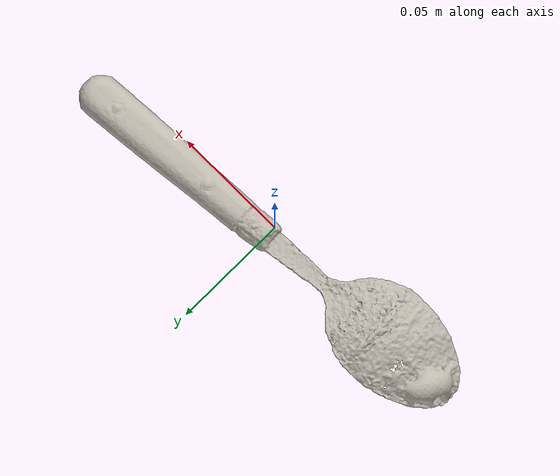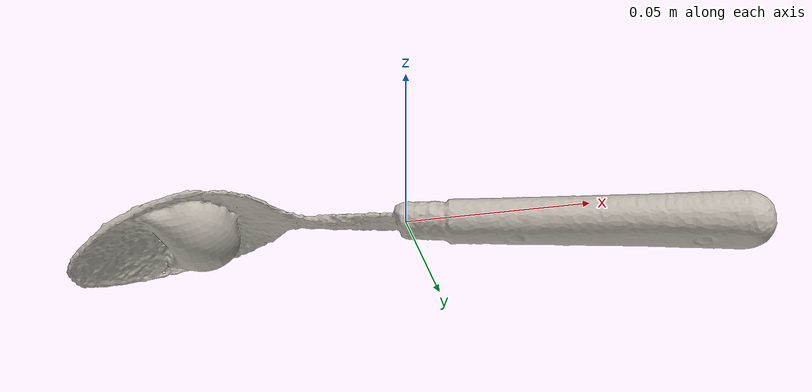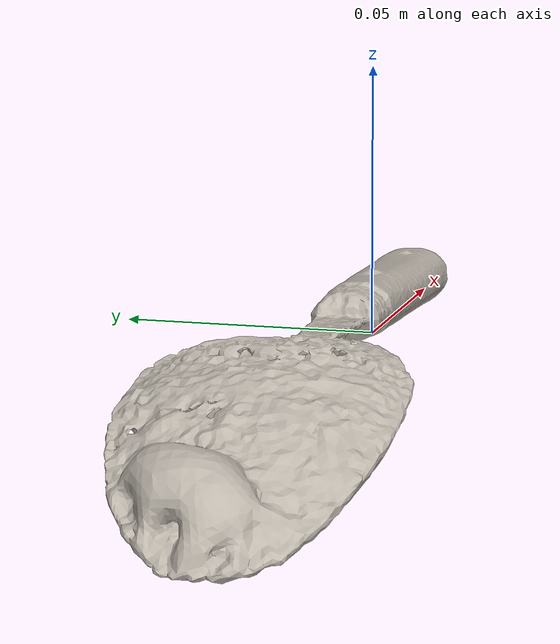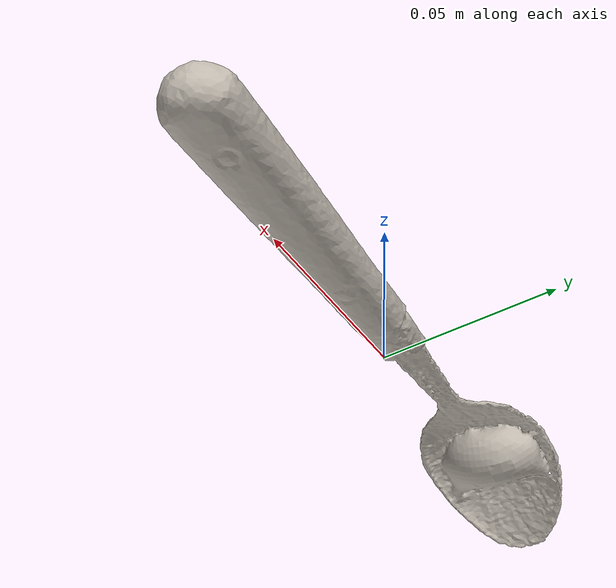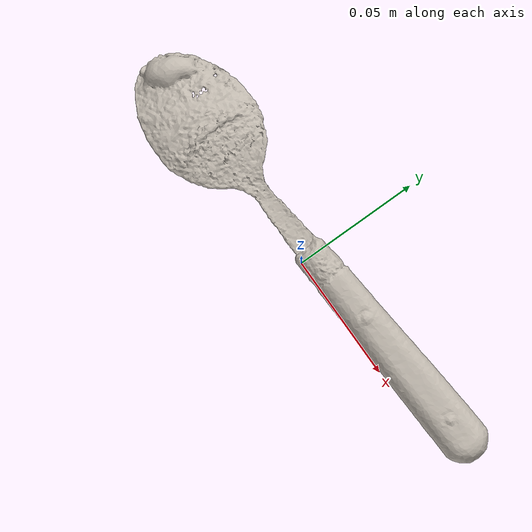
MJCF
<mujoco model="textured">
  <default>
    <default class="visual">
      <geom group="1" type="mesh" contype="0" conaffinity="0"/>
    </default>
    <default class="collision">
      <geom group="0" type="mesh"/>
    </default>
  </default>
  <asset>
    <texture type="2d" name="spoon" file="spoon.png"/>
    <material name="spoon" texture="spoon" specular="0.4000000000000001" shininess="0.001"/>
    <mesh name="spoon" file="spoon.obj"/>
  </asset>
  <worldbody>
    <body>
    <body name="object">
      <geom material="spoon" mesh="spoon" class="visual"/>
      <geom mesh="spoon" class="collision"/>
    </body>
	      <site rgba="0 0 0 0" size="0.005" pos="0 0 -0.04" name="bottom_site" />
	      <site rgba="0 0 0 0" size="0.005" pos="0 0 0.04" name="top_site" />
	      <site rgba="0 0 0 0" size="0.005" pos="0.005 0.005 0" name="horizontal_radius_site" />
    </body>
  </worldbody>
</mujoco>
